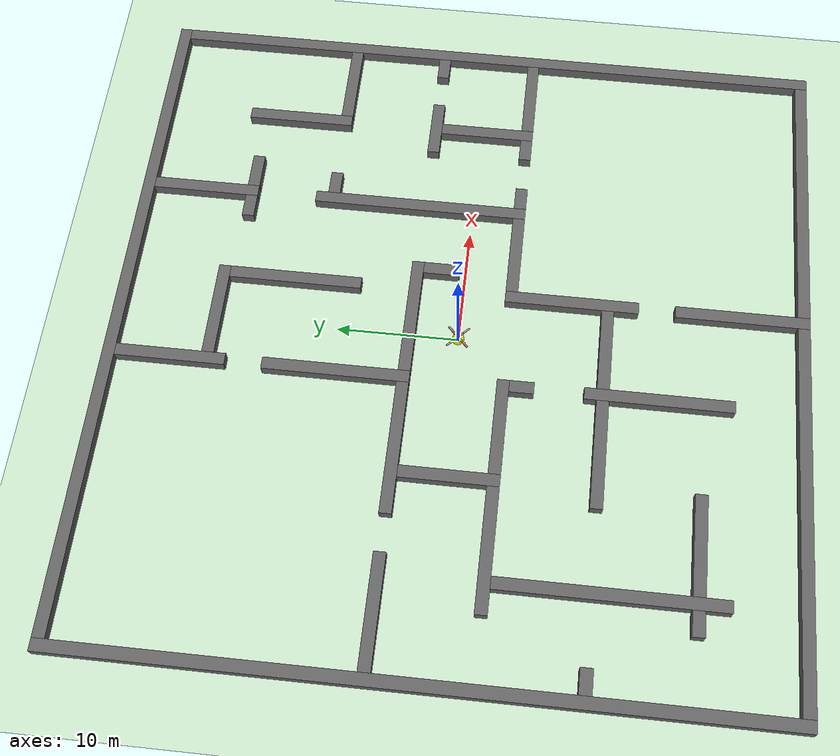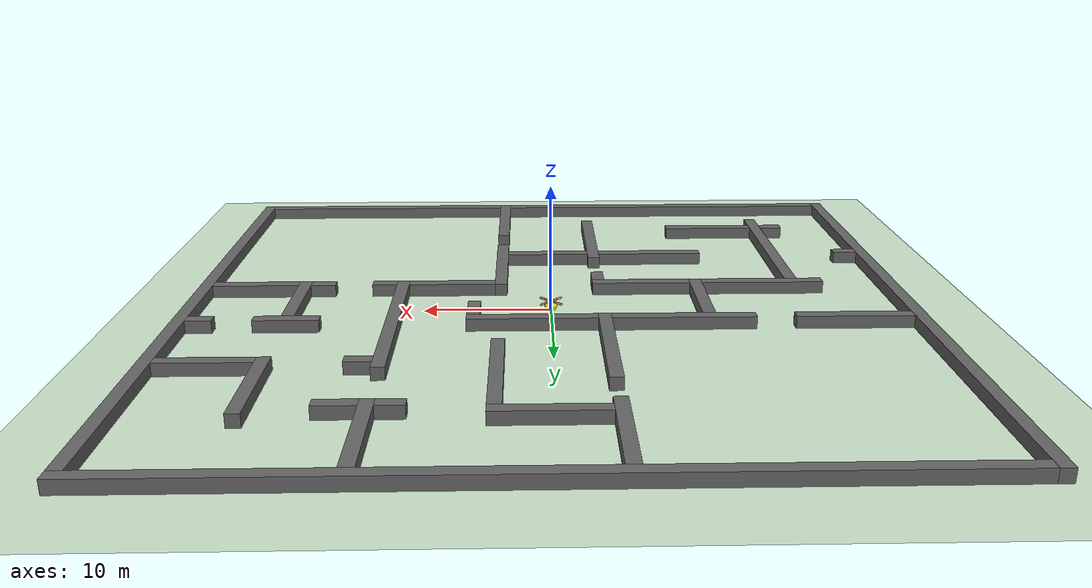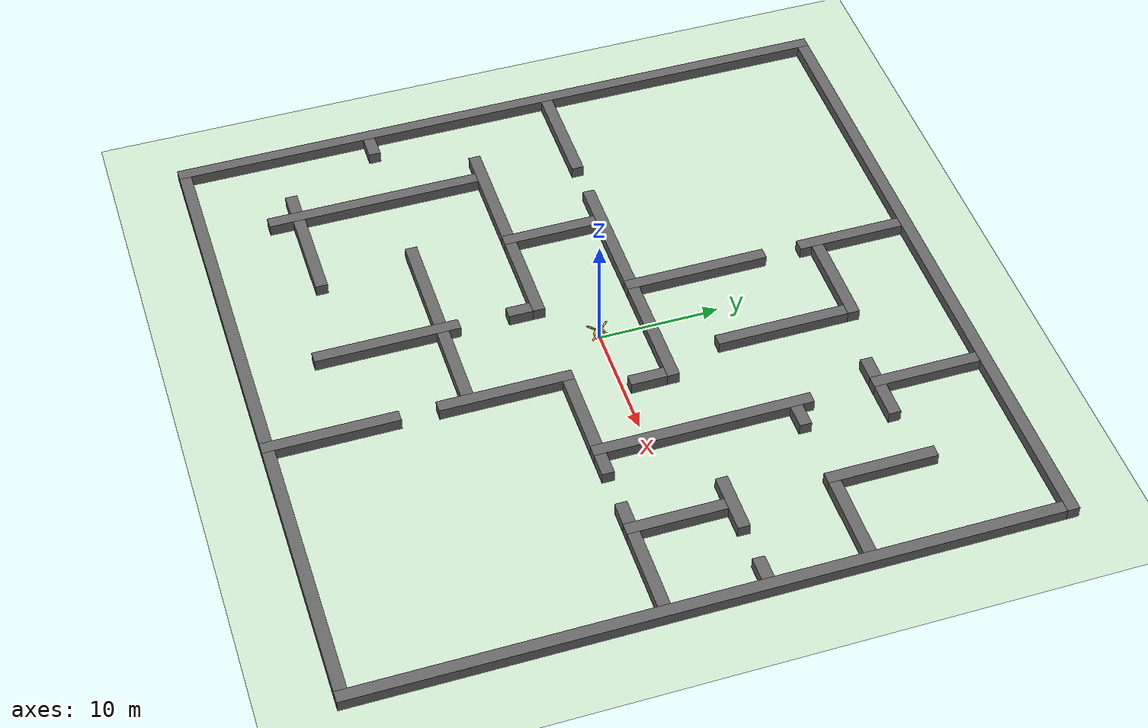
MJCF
<mujoco model="ant">
  <compiler angle="degree" coordinate="local" inertiafromgeom="true"/>
  <option integrator="RK4" timestep="0.02"/>
  <custom>
    <numeric data="0.0 0.0 0.55 1.0 0.0 0.0 0.0 0.0 1.0 0.0 -1.0 0.0 -1.0 0.0 1.0" name="init_qpos"/>
  </custom>
  <default>
    <joint armature="1" damping="1" limited="true"/>
    <geom conaffinity="0" condim="3" density="5.0" friction="1 0.5 0.5" margin="0.01" rgba="0.8 0.6 0.4 1"/>
  </default>
  <asset>
    <texture builtin="gradient" height="100" rgb1="1 1 1" rgb2="0 0 0" type="skybox" width="100"/>
    <texture builtin="flat" height="1278" mark="cross" markrgb="1 1 1" name="texgeom" random="0.01" rgb1="0.8 0.6 0.4" rgb2="0.8 0.6 0.4" type="cube" width="127"/>
    <texture builtin="checker" height="100" name="texplane" rgb1="0 0 0" rgb2="0.8 0.8 0.8" type="2d" width="100"/>
    <material name="MatPlane" reflectance="0.5" shininess="1" specular="1" texrepeat="60 60" texture="texplane"/>
    <material name="geom" texture="texgeom" texuniform="true"/>
  </asset>
  <worldbody>
    <light cutoff="100" diffuse="1 1 1" dir="-0 0 -1.3" directional="true" exponent="1" pos="0 0 1.3" specular=".1 .1 .1"/>
    <geom conaffinity="1" condim="3" material="MatPlane" name="floor" pos="0 0 0" rgba="0.8 0.9 0.8 1" size="40 40 40" type="plane"/>
    <body name="torso" pos="0 0 0.75">
      <camera name="track" mode="trackcom" pos="0 -3 0.3" xyaxes="1 0 0 0 0 1"/>
      <geom name="torso_geom" pos="0 0 0" size="0.25" type="sphere"/>
      <joint armature="0" damping="0" limited="false" margin="0.01" name="root" pos="0 0 0" type="free"/>
      <body name="front_left_leg" pos="0 0 0">
        <geom fromto="0.0 0.0 0.0 0.2 0.2 0.0" name="aux_1_geom" size="0.08" type="capsule"/>
        <body name="aux_1" pos="0.2 0.2 0">
          <joint axis="0 0 1" name="hip_1" pos="0.0 0.0 0.0" range="-30 30" type="hinge"/>
          <geom fromto="0.0 0.0 0.0 0.2 0.2 0.0" name="left_leg_geom" size="0.08" type="capsule"/>
          <body pos="0.2 0.2 0">
            <joint axis="-1 1 0" name="ankle_1" pos="0.0 0.0 0.0" range="30 70" type="hinge"/>
            <geom fromto="0.0 0.0 0.0 0.4 0.4 0.0" name="left_ankle_geom" size="0.08" type="capsule"/>
          </body>
        </body>
      </body>
      <body name="front_right_leg" pos="0 0 0">
        <geom fromto="0.0 0.0 0.0 -0.2 0.2 0.0" name="aux_2_geom" size="0.08" type="capsule"/>
        <body name="aux_2" pos="-0.2 0.2 0">
          <joint axis="0 0 1" name="hip_2" pos="0.0 0.0 0.0" range="-30 30" type="hinge"/>
          <geom fromto="0.0 0.0 0.0 -0.2 0.2 0.0" name="right_leg_geom" size="0.08" type="capsule"/>
          <body pos="-0.2 0.2 0">
            <joint axis="1 1 0" name="ankle_2" pos="0.0 0.0 0.0" range="-70 -30" type="hinge"/>
            <geom fromto="0.0 0.0 0.0 -0.4 0.4 0.0" name="right_ankle_geom" size="0.08" type="capsule"/>
          </body>
        </body>
      </body>
      <body name="back_leg" pos="0 0 0">
        <geom fromto="0.0 0.0 0.0 -0.2 -0.2 0.0" name="aux_3_geom" size="0.08" type="capsule"/>
        <body name="aux_3" pos="-0.2 -0.2 0">
          <joint axis="0 0 1" name="hip_3" pos="0.0 0.0 0.0" range="-30 30" type="hinge"/>
          <geom fromto="0.0 0.0 0.0 -0.2 -0.2 0.0" name="back_leg_geom" size="0.08" type="capsule"/>
          <body pos="-0.2 -0.2 0">
            <joint axis="-1 1 0" name="ankle_3" pos="0.0 0.0 0.0" range="-70 -30" type="hinge"/>
            <geom fromto="0.0 0.0 0.0 -0.4 -0.4 0.0" name="third_ankle_geom" size="0.08" type="capsule"/>
          </body>
        </body>
      </body>
      <body name="right_back_leg" pos="0 0 0">
        <geom fromto="0.0 0.0 0.0 0.2 -0.2 0.0" name="aux_4_geom" size="0.08" type="capsule"/>
        <body name="aux_4" pos="0.2 -0.2 0">
          <joint axis="0 0 1" name="hip_4" pos="0.0 0.0 0.0" range="-30 30" type="hinge"/>
          <geom fromto="0.0 0.0 0.0 0.2 -0.2 0.0" name="rightback_leg_geom" size="0.08" type="capsule"/>
          <body pos="0.2 -0.2 0">
            <joint axis="1 1 0" name="ankle_4" pos="0.0 0.0 0.0" range="30 70" type="hinge"/>
            <geom fromto="0.0 0.0 0.0 0.4 -0.4 0.0" name="fourth_ankle_geom" size="0.08" type="capsule"/>
          </body>
        </body>
      </body>
    </body>
    <!-- Create goal and subgoal visualizations -->
    <body name="goal_platform" pos="0 0 0.4" mocap="true">
      <site type="sphere" size="0.5" rgba="1 1 0 1"/>
    </body>
    <body name="subgoal_0" pos="0 0 0.4" mocap="true">
      <site type="sphere" size="0.5" rgba="1 0 1 0"/>
    </body>
    <body name="subgoal_1" pos="0 0 0.4" mocap="true">
      <site type="sphere" size="0.5" rgba="0 1 0 0"/>
    </body>
    <body name="horizontal_wall_0" pos="0.5 28.0 0.5">
      <geom type="box" size="28.0 0.5 0.5" contype="1" conaffinity="1" rgba="0.4 0.4 0.4 1"/>
    </body>
    <body name="horizontal_wall_1" pos="0.5 20.0 0.5">
      <geom type="box" size="4.0 0.5 0.5" contype="1" conaffinity="1" rgba="0.4 0.4 0.4 1"/>
    </body>
    <body name="horizontal_wall_2" pos="10.5 19.0 0.5">
      <geom type="box" size="1.0 0.5 0.5" contype="1" conaffinity="1" rgba="0.4 0.4 0.4 1"/>
    </body>
    <body name="horizontal_wall_3" pos="14.0 19.0 0.5">
      <geom type="box" size="1.5 0.5 0.5" contype="1" conaffinity="1" rgba="0.4 0.4 0.4 1"/>
    </body>
    <body name="horizontal_wall_4" pos="13.5 12.0 0.5">
      <geom type="box" size="1.0 0.5 0.5" contype="1" conaffinity="1" rgba="0.4 0.4 0.4 1"/>
    </body>
    <body name="horizontal_wall_5" pos="24.0 12.0 0.5">
      <geom type="box" size="3.5 0.5 0.5" contype="1" conaffinity="1" rgba="0.4 0.4 0.4 1"/>
    </body>
    <body name="horizontal_wall_6" pos="-23.0 4.0 0.5">
      <geom type="box" size="4.5 0.5 0.5" contype="1" conaffinity="1" rgba="0.4 0.4 0.4 1"/>
    </body>
    <body name="horizontal_wall_7" pos="-10.0 4.0 0.5">
      <geom type="box" size="5.5 0.5 0.5" contype="1" conaffinity="1" rgba="0.4 0.4 0.4 1"/>
    </body>
    <body name="horizontal_wall_8" pos="1.5 4.0 0.5">
      <geom type="box" size="5.0 0.5 0.5" contype="1" conaffinity="1" rgba="0.4 0.4 0.4 1"/>
    </body>
    <body name="horizontal_wall_9" pos="20.0 4.0 0.5">
      <geom type="box" size="2.5 0.5 0.5" contype="1" conaffinity="1" rgba="0.4 0.4 0.4 1"/>
    </body>
    <body name="horizontal_wall_10" pos="26.5 4.0 0.5">
      <geom type="box" size="1.0 0.5 0.5" contype="1" conaffinity="1" rgba="0.4 0.4 0.4 1"/>
    </body>
    <body name="horizontal_wall_11" pos="-17.5 -4.0 0.5">
      <geom type="box" size="5.0 0.5 0.5" contype="1" conaffinity="1" rgba="0.4 0.4 0.4 1"/>
    </body>
    <body name="horizontal_wall_12" pos="-7.5 -4.0 0.5">
      <geom type="box" size="4.0 0.5 0.5" contype="1" conaffinity="1" rgba="0.4 0.4 0.4 1"/>
    </body>
    <body name="horizontal_wall_13" pos="8.0 -4.0 0.5">
      <geom type="box" size="3.5 0.5 0.5" contype="1" conaffinity="1" rgba="0.4 0.4 0.4 1"/>
    </body>
    <body name="horizontal_wall_14" pos="13.5 -4.0 0.5">
      <geom type="box" size="1.0 0.5 0.5" contype="1" conaffinity="1" rgba="0.4 0.4 0.4 1"/>
    </body>
    <body name="horizontal_wall_15" pos="18.5 -4.0 0.5">
      <geom type="box" size="1.0 0.5 0.5" contype="1" conaffinity="1" rgba="0.4 0.4 0.4 1"/>
    </body>
    <body name="horizontal_wall_16" pos="24.0 -4.0 0.5">
      <geom type="box" size="3.5 0.5 0.5" contype="1" conaffinity="1" rgba="0.4 0.4 0.4 1"/>
    </body>
    <body name="horizontal_wall_17" pos="-26.5 -12.0 0.5">
      <geom type="box" size="1.0 0.5 0.5" contype="1" conaffinity="1" rgba="0.4 0.4 0.4 1"/>
    </body>
    <body name="horizontal_wall_18" pos="-9.0 -12.0 0.5">
      <geom type="box" size="4.5 0.5 0.5" contype="1" conaffinity="1" rgba="0.4 0.4 0.4 1"/>
    </body>
    <body name="horizontal_wall_19" pos="0.0 -12.0 0.5">
      <geom type="box" size="3.5 0.5 0.5" contype="1" conaffinity="1" rgba="0.4 0.4 0.4 1"/>
    </body>
    <body name="horizontal_wall_20" pos="-21.5 -20.0 0.5">
      <geom type="box" size="1.0 0.5 0.5" contype="1" conaffinity="1" rgba="0.4 0.4 0.4 1"/>
    </body>
    <body name="horizontal_wall_21" pos="-15.5 -20.0 0.5">
      <geom type="box" size="4.0 0.5 0.5" contype="1" conaffinity="1" rgba="0.4 0.4 0.4 1"/>
    </body>
    <body name="horizontal_wall_22" pos="-12.0 -28.0 0.5">
      <geom type="box" size="15.5 0.5 0.5" contype="1" conaffinity="1" rgba="0.4 0.4 0.4 1"/>
    </body>
    <body name="horizontal_wall_23" pos="16.0 -28.0 0.5">
      <geom type="box" size="11.5 0.5 0.5" contype="1" conaffinity="1" rgba="0.4 0.4 0.4 1"/>
    </body>
    <body name="vertical_wall_0" pos="-28.0 0.0 0.5">
      <geom type="box" size="0.5 28.5 0.5" contype="1" conaffinity="1" rgba="0.4 0.4 0.4 1"/>
    </body>
    <body name="vertical_wall_1" pos="-4.0 23.0 0.5">
      <geom type="box" size="0.5 4.5 0.5" contype="1" conaffinity="1" rgba="0.4 0.4 0.4 1"/>
    </body>
    <body name="vertical_wall_2" pos="12.0 23.0 0.5">
      <geom type="box" size="0.5 4.5 0.5" contype="1" conaffinity="1" rgba="0.4 0.4 0.4 1"/>
    </body>
    <body name="vertical_wall_3" pos="28.0 -0.5 0.5">
      <geom type="box" size="0.5 28.0 0.5" contype="1" conaffinity="1" rgba="0.4 0.4 0.4 1"/>
    </body>
    <body name="vertical_wall_4" pos="20.0 16.0 0.5">
      <geom type="box" size="0.5 4.5 0.5" contype="1" conaffinity="1" rgba="0.4 0.4 0.4 1"/>
    </body>
    <body name="vertical_wall_5" pos="4.0 14.0 0.5">
      <geom type="box" size="0.5 5.5 0.5" contype="1" conaffinity="1" rgba="0.4 0.4 0.4 1"/>
    </body>
    <body name="vertical_wall_6" pos="-4.0 9.5 0.5">
      <geom type="box" size="0.5 6.0 0.5" contype="1" conaffinity="1" rgba="0.4 0.4 0.4 1"/>
    </body>
    <body name="vertical_wall_7" pos="12.0 4.5 0.5">
      <geom type="box" size="0.5 9.0 0.5" contype="1" conaffinity="1" rgba="0.4 0.4 0.4 1"/>
    </body>
    <body name="vertical_wall_8" pos="-12.0 -0.5 0.5">
      <geom type="box" size="0.5 4.0 0.5" contype="1" conaffinity="1" rgba="0.4 0.4 0.4 1"/>
    </body>
    <body name="vertical_wall_9" pos="6.0 2.0 0.5">
      <geom type="box" size="0.5 1.5 0.5" contype="1" conaffinity="1" rgba="0.4 0.4 0.4 1"/>
    </body>
    <body name="vertical_wall_10" pos="20.0 -0.5 0.5">
      <geom type="box" size="0.5 4.0 0.5" contype="1" conaffinity="1" rgba="0.4 0.4 0.4 1"/>
    </body>
    <body name="vertical_wall_11" pos="4.0 -9.0 0.5">
      <geom type="box" size="0.5 5.5 0.5" contype="1" conaffinity="1" rgba="0.4 0.4 0.4 1"/>
    </body>
    <body name="vertical_wall_12" pos="-20.0 -13.5 0.5">
      <geom type="box" size="0.5 9.0 0.5" contype="1" conaffinity="1" rgba="0.4 0.4 0.4 1"/>
    </body>
    <body name="vertical_wall_13" pos="-4.0 -5.5 0.5">
      <geom type="box" size="0.5 1.0 0.5" contype="1" conaffinity="1" rgba="0.4 0.4 0.4 1"/>
    </body>
    <body name="vertical_wall_14" pos="-4.0 -16.5 0.5">
      <geom type="box" size="0.5 6.0 0.5" contype="1" conaffinity="1" rgba="0.4 0.4 0.4 1"/>
    </body>
    <body name="vertical_wall_15" pos="4.0 -23.0 0.5">
      <geom type="box" size="0.5 5.5 0.5" contype="1" conaffinity="1" rgba="0.4 0.4 0.4 1"/>
    </body>
  </worldbody>
  <actuator>
    <motor ctrllimited="true" ctrlrange="-1.0 1.0" joint="hip_4" gear="16"/>
    <motor ctrllimited="true" ctrlrange="-1.0 1.0" joint="ankle_4" gear="16"/>
    <motor ctrllimited="true" ctrlrange="-1.0 1.0" joint="hip_1" gear="16"/>
    <motor ctrllimited="true" ctrlrange="-1.0 1.0" joint="ankle_1" gear="16"/>
    <motor ctrllimited="true" ctrlrange="-1.0 1.0" joint="hip_2" gear="16"/>
    <motor ctrllimited="true" ctrlrange="-1.0 1.0" joint="ankle_2" gear="16"/>
    <motor ctrllimited="true" ctrlrange="-1.0 1.0" joint="hip_3" gear="16"/>
    <motor ctrllimited="true" ctrlrange="-1.0 1.0" joint="ankle_3" gear="16"/>
  </actuator>
</mujoco>
